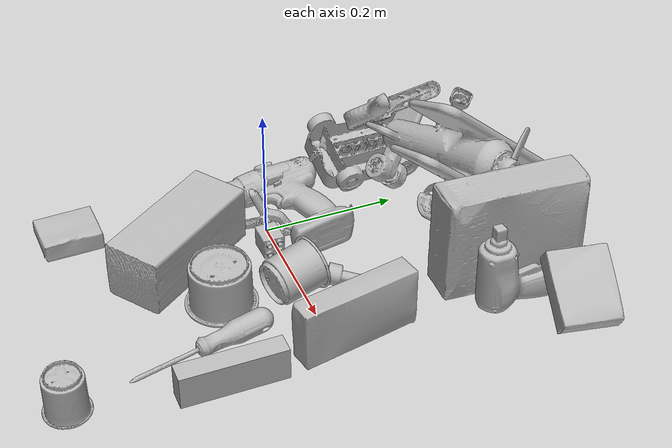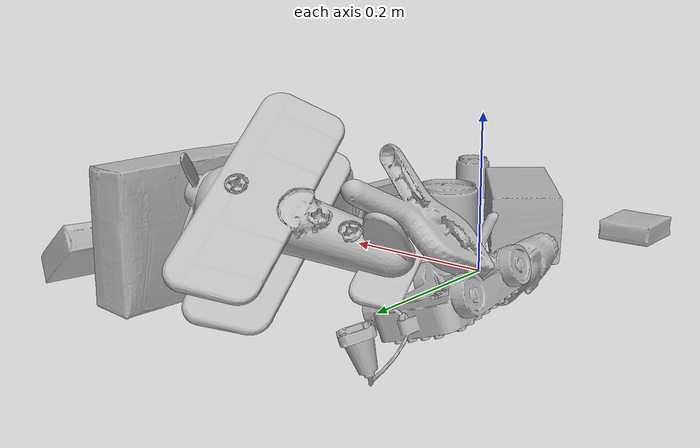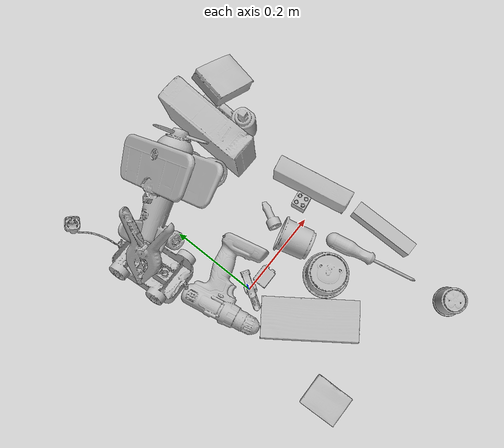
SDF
<sdf version="1.4">
  <world name="default">
    <light name="light1" type="point">
      <pose>0 0 1 0 0 0</pose>
      <diffuse>3 3 3 1</diffuse>
      <specular>3 3 3 1</specular>
    </light>
    <light name="light2" type="point">
      <pose>0 0.5 2 0 0 0</pose>
      <diffuse>1 1 1 1</diffuse>
      <specular>1 1 1 1</specular>
    </light>
    <light name="light3" type="point">
      <pose>0 0.5 2 0 0 0</pose>
      <diffuse>3 3 3 1</diffuse>
      <specular>3 3 3 1</specular>
    </light>
    <scene>
      <ambient>0.7 0.7 0.7</ambient>
    </scene>
    <model name="box21">
      <link name="link_box21">
        <collision name="default">
          <geometry>
            <mesh>
              <uri>model://cracker_box/collision_meshes/collision.obj</uri>
              <scale>1.0 1.0 1.0</scale>
            </mesh>
          </geometry>
          <surface>
            <friction>
              <ode>
                <mu>0.5</mu>
                <mu2>0.5</mu2>
              </ode>
            </friction>
          <contact>
        <ode>
            <max_vel>0</max_vel>
            <min_depth>0.0001</min_depth>
            <kp>1e8</kp>
        </ode>
    </contact></surface>
        </collision>
        <visual name="default">
          <geometry>
            <mesh>
              <uri>model://cracker_box/visual_meshes/visual.dae</uri>
              <scale>1.0 1.0 1.0</scale>
            </mesh>
          </geometry>
        </visual>
        <inertial>
          <mass>2.2869980335235596</mass>
          <pose>0.0009464151225984097 0.0002543425071053207 -0.0017029535956680775 -0.0003162075418873318 -0.011106487737663914 0.0025467956997025456</pose>
          <inertia>
            <ixx>0.005817102</ixx>
            <iyy>0.009605178</iyy>
            <izz>0.013707472</izz>
            <ixy>0</ixy>
            <ixz>0</ixz>
            <iyz>0</iyz>
          </inertia>
        </inertial>
      </link>
      <pose>0.2186243236064911 0.28178444504737854 0.08175773918628693 1.5452255725080954 0.009039243670831037 1.5375329191094969</pose>
    </model>
    <model name="box22">
      <link name="link_box22">
        <collision name="default">
          <geometry>
            <mesh>
              <uri>model://pudding_box/collision_meshes/collision.obj</uri>
              <scale>1.0 1.0 1.0</scale>
            </mesh>
          </geometry>
          <surface>
            <friction>
              <ode>
                <mu>0.5</mu>
                <mu2>0.5</mu2>
              </ode>
            </friction>
          <contact>
        <ode>
            <max_vel>0</max_vel>
            <min_depth>0.0001</min_depth>
            <kp>1e8</kp>
        </ode>
    </contact></surface>
        </collision>
        <visual name="default">
          <geometry>
            <mesh>
              <uri>model://pudding_box/visual_meshes/visual.dae</uri>
              <scale>1.0 1.0 1.0</scale>
            </mesh>
          </geometry>
        </visual>
        <inertial>
          <mass>0.5370154976844788</mass>
          <pose>0.0004894821904599667 0.0008067885646596551 -0.0005188827635720372 0.005213101796859606 -0.006603800100757192 0.02007981956729938</pose>
          <inertia>
            <ixx>0.0006070684</ixx>
            <iyy>0.00040843996</iyy>
            <izz>0.00089649507</izz>
            <ixy>0</ixy>
            <ixz>0</ixz>
            <iyz>0</iyz>
          </inertia>
        </inertial>
      </link>
      <pose>0.32950958609580994 0.3380461037158966 0.04389103129506111 -2.5781946163838043 -0.018219446237163782 1.3791597333598353</pose>
    </model>
    <model name="box23">
      <link name="link_box23">
        <collision name="default">
          <geometry>
            <mesh>
              <uri>model://jenga/collision_meshes/collision.obj</uri>
              <scale>1.0 1.0 1.0</scale>
            </mesh>
          </geometry>
          <surface>
            <friction>
              <ode>
                <mu>0.5</mu>
                <mu2>0.5</mu2>
              </ode>
            </friction>
          <contact>
        <ode>
            <max_vel>0</max_vel>
            <min_depth>0.0001</min_depth>
            <kp>1e8</kp>
        </ode>
    </contact></surface>
        </collision>
        <visual name="default">
          <geometry>
            <mesh>
              <uri>model://jenga/visual_meshes/visual.dae</uri>
              <scale>1.0 1.0 1.0</scale>
            </mesh>
          </geometry>
        </visual>
        <inertial>
          <mass>0.17325031757354736</mass>
          <pose>-2.502855807051674e-07 -0.0001025000965455547 -4.0923401684267446e-05 0.0 -7.34215461761844e-07 0.0</pose>
          <inertia>
            <ixx>4.7942573e-05</ixx>
            <iyy>0.00032485754</iyy>
            <izz>0.00034681303</izz>
            <ixy>0</ixy>
            <ixz>0</ixz>
            <iyz>0</iyz>
          </inertia>
        </inertial>
      </link>
      <pose>0.2850659489631653 -0.14961683750152588 0.024496952071785927 -1.5774969934094016 8.291636621784347e-08 -1.570798253518544</pose>
    </model>
    <model name="cup1">
      <link name="link_cup1">
        <collision name="default">
          <geometry>
            <mesh>
              <uri>model://c_cups/collision_meshes/collision.obj</uri>
              <scale>1.0 1.0 1.0</scale>
            </mesh>
          </geometry>
          <surface>
            <friction>
              <ode>
                <mu>0.5</mu>
                <mu2>0.5</mu2>
              </ode>
            </friction>
          <contact>
        <ode>
            <max_vel>0</max_vel>
            <min_depth>0.0001</min_depth>
            <kp>1e8</kp>
        </ode>
    </contact></surface>
        </collision>
        <visual name="default">
          <geometry>
            <mesh>
              <uri>model://c_cups/visual_meshes/visual.dae</uri>
              <scale>1.0 1.0 1.0</scale>
            </mesh>
          </geometry>
        </visual>
        <inertial>
          <mass>0.033937059342861176</mass>
          <pose>0.0007237257086671889 0.002015391131862998 -0.0012750985333696008 0.3021568203324006 0.0134615240317058 -0.08771816491093205</pose>
          <inertia>
            <ixx>2.5238536e-05</ixx>
            <iyy>2.4792533e-05</iyy>
            <izz>2.2320162e-05</izz>
            <ixy>0</ixy>
            <ixz>0</ixz>
            <iyz>0</iyz>
          </inertia>
        </inertial>
      </link>
      <pose>0.25108328461647034 -0.3586447536945343 0.03345794230699539 3.1415895109355834 7.317653780769577e-06 -0.5388472066433172</pose>
    </model>
    <model name="cup2">
      <link name="link_cup2">
        <collision name="default">
          <geometry>
            <mesh>
              <uri>model://f_cups/collision_meshes/collision.obj</uri>
              <scale>1.0 1.0 1.0</scale>
            </mesh>
          </geometry>
          <surface>
            <friction>
              <ode>
                <mu>0.5</mu>
                <mu2>0.5</mu2>
              </ode>
            </friction>
          <contact>
        <ode>
            <max_vel>0</max_vel>
            <min_depth>0.0001</min_depth>
            <kp>1e8</kp>
        </ode>
    </contact></surface>
        </collision>
        <visual name="default">
          <geometry>
            <mesh>
              <uri>model://f_cups/visual_meshes/visual.dae</uri>
              <scale>1.0 1.0 1.0</scale>
            </mesh>
          </geometry>
        </visual>
        <inertial>
          <mass>0.10278050601482391</mass>
          <pose>-0.003171466989442706 -0.0006240068469196558 -0.003655537962913513 0.7862283183637603 -0.2607933822369466 -0.1823733550036739</pose>
          <inertia>
            <ixx>9.661645e-05</ixx>
            <iyy>0.00010135175</iyy>
            <izz>0.000105510015</izz>
            <ixy>0</ixy>
            <ixz>0</ixz>
            <iyz>0</iyz>
          </inertia>
        </inertial>
      </link>
      <pose>0.14634668827056885 -0.01293276622891426 0.03703070059418678 1.3151822025973394 -1.1784336254432313 -2.646452695091779</pose>
    </model>
    <model name="box11">
      <link name="link_box11">
        <collision name="default">
          <geometry>
            <mesh>
              <uri>model://wood_block/collision_meshes/collision.obj</uri>
              <scale>1.0 1.0 1.0</scale>
            </mesh>
          </geometry>
          <surface>
            <friction>
              <ode>
                <mu>0.5</mu>
                <mu2>0.5</mu2>
              </ode>
            </friction>
          <contact>
        <ode>
            <max_vel>0</max_vel>
            <min_depth>0.0001</min_depth>
            <kp>1e8</kp>
        </ode>
    </contact></surface>
        </collision>
        <visual name="default">
          <geometry>
            <mesh>
              <uri>model://wood_block/visual_meshes/visual.dae</uri>
              <scale>1.0 1.0 1.0</scale>
            </mesh>
          </geometry>
        </visual>
        <inertial>
          <mass>2.321592330932617</mass>
          <pose>-5.813315056002466e-06 -0.000570809468626976 0.0002640858292579651 -0.052209755297172346 -0.005192694580027673 -0.006861376555374886</pose>
          <inertia>
            <ixx>0.0031066423</ixx>
            <iyy>0.009813884</iyy>
            <izz>0.009777175</izz>
            <ixy>0</ixy>
            <ixz>0</ixz>
            <iyz>0</iyz>
          </inertia>
        </inertial>
      </link>
      <pose>0.02806086093187332 -0.1425059288740158 0.04570064693689346 1.568130066593328 -0.006939247699407973 -0.944622491086994</pose>
    </model>
    <model name="box12">
      <link name="link_box12">
        <collision name="default">
          <geometry>
            <mesh>
              <uri>model://gelatin_box/collision_meshes/collision.obj</uri>
              <scale>1.0 1.0 1.0</scale>
            </mesh>
          </geometry>
          <surface>
            <friction>
              <ode>
                <mu>0.5</mu>
                <mu2>0.5</mu2>
              </ode>
            </friction>
          <contact>
        <ode>
            <max_vel>0</max_vel>
            <min_depth>0.0001</min_depth>
            <kp>1e8</kp>
        </ode>
    </contact></surface>
        </collision>
        <visual name="default">
          <geometry>
            <mesh>
              <uri>model://gelatin_box/visual_meshes/visual.dae</uri>
              <scale>1.0 1.0 1.0</scale>
            </mesh>
          </geometry>
        </visual>
        <inertial>
          <mass>0.2263340801000595</mass>
          <pose>0.0004319618456065655 0.00011156871914863586 -0.00036403207923285663 -0.001050371981036731 -0.004755818689382226 0.016440561334450605</pose>
          <inertia>
            <ixx>0.00015977336</ixx>
            <iyy>0.00011412529</iyy>
            <izz>0.00024321067</izz>
            <ixy>0</ixy>
            <ixz>0</ixz>
            <iyz>0</iyz>
          </inertia>
        </inertial>
      </link>
      <pose>-0.08308575302362442 -0.27724531292915344 0.015168312005698681 0.005597481810681447 -0.007304567212865352 0.019800986934652622</pose>
    </model>
    <model name="box13">
      <link name="link_box13">
        <collision name="default">
          <geometry>
            <mesh>
              <uri>model://sugar_box/collision_meshes/collision.obj</uri>
              <scale>1.0 1.0 1.0</scale>
            </mesh>
          </geometry>
          <surface>
            <friction>
              <ode>
                <mu>0.5</mu>
                <mu2>0.5</mu2>
              </ode>
            </friction>
          <contact>
        <ode>
            <max_vel>0</max_vel>
            <min_depth>0.0001</min_depth>
            <kp>1e8</kp>
        </ode>
    </contact></surface>
        </collision>
        <visual name="default">
          <geometry>
            <mesh>
              <uri>model://sugar_box/visual_meshes/visual.dae</uri>
              <scale>1.0 1.0 1.0</scale>
            </mesh>
          </geometry>
        </visual>
        <inertial>
          <mass>0.4976349174976349</mass>
          <pose>0.0010343727190047503 3.849109634757042e-05 -0.00036364805418998003 -0.0004046263004245651 0.001050663405794887 0.002615379021776999</pose>
          <inertia>
            <ixx>0.0004146281</ixx>
            <iyy>0.0013401629</iyy>
            <izz>0.0016043353</izz>
            <ixy>0</ixy>
            <ixz>0</ixz>
            <iyz>0</iyz>
          </inertia>
        </inertial>
      </link>
      <pose>0.26289623975753784 0.03114255517721176 0.04635182395577431 -1.591764103698983 -0.009312178767114437 1.753650972507802</pose>
    </model>
    <model name="box14">
      <link name="link_box14">
        <collision name="default">
          <geometry>
            <mesh>
              <uri>model://rubiks_cube/collision_meshes/collision.obj</uri>
              <scale>1.0 1.0 1.0</scale>
            </mesh>
          </geometry>
          <surface>
            <friction>
              <ode>
                <mu>0.5</mu>
                <mu2>0.5</mu2>
              </ode>
            </friction>
          <contact>
        <ode>
            <max_vel>0</max_vel>
            <min_depth>0.0001</min_depth>
            <kp>1e8</kp>
        </ode>
    </contact></surface>
        </collision>
        <visual name="default">
          <geometry>
            <mesh>
              <uri>model://rubiks_cube/visual_meshes/visual.dae</uri>
              <scale>1.0 1.0 1.0</scale>
            </mesh>
          </geometry>
        </visual>
        <inertial>
          <mass>0.2531126141548157</mass>
          <pose>2.6721041649580002e-05 5.2569666877388954e-05 -7.264316536748083e-06 -0.05467274129792389 -0.0981396008906979 -0.0344563195746163</pose>
          <inertia>
            <ixx>0.00013986173</ixx>
            <iyy>0.00013920949</iyy>
            <izz>0.00014102072</izz>
            <ixy>0</ixy>
            <ixz>0</ixz>
            <iyz>0</iyz>
          </inertia>
        </inertial>
      </link>
      <pose>0.1300724595785141 -0.11142284423112869 0.02933083288371563 1.577764520146619 -0.016539248023460133 -1.3957147437742194</pose>
    </model>
    <model name="cup15">
      <link name="link_cup15">
        <collision name="default">
          <geometry>
            <mesh>
              <uri>model://j_cups/collision_meshes/collision.obj</uri>
              <scale>1.0 1.0 1.0</scale>
            </mesh>
          </geometry>
          <surface>
            <friction>
              <ode>
                <mu>0.5</mu>
                <mu2>0.5</mu2>
              </ode>
            </friction>
          <contact>
        <ode>
            <max_vel>0</max_vel>
            <min_depth>0.0001</min_depth>
            <kp>1e8</kp>
        </ode>
    </contact></surface>
        </collision>
        <visual name="default">
          <geometry>
            <mesh>
              <uri>model://j_cups/visual_meshes/visual.dae</uri>
              <scale>1.0 1.0 1.0</scale>
            </mesh>
          </geometry>
        </visual>
        <inertial>
          <mass>0.12765173614025116</mass>
          <pose>0.0006164864171296358 0.0005398980574682355 -0.0013479006011039019 0.030303852295551513 0.03757989298695449 0.4386938541947324</pose>
          <inertia>
            <ixx>0.00018743309</ixx>
            <iyy>0.00018938213</iyy>
            <izz>0.0002160715</izz>
            <ixy>0</ixy>
            <ixz>0</ixz>
            <iyz>0</iyz>
          </inertia>
        </inertial>
      </link>
      <pose>0.13029469549655914 -0.1130780577659607 0.03800104558467865 -3.139910264038598 0.006110626851859396 -1.3322771193246024</pose>
    </model>
    <model name="toy1">
      <link name="link_toy1">
        <collision name="default">
          <geometry>
            <mesh>
              <uri>model://f_lego_duplo/collision_meshes/collision.obj</uri>
              <scale>1.0 1.0 1.0</scale>
            </mesh>
          </geometry>
          <surface>
            <friction>
              <ode>
                <mu>0.5</mu>
                <mu2>0.5</mu2>
              </ode>
            </friction>
          <contact>
        <ode>
            <max_vel>0</max_vel>
            <min_depth>0.0001</min_depth>
            <kp>1e8</kp>
        </ode>
    </contact></surface>
        </collision>
        <visual name="default">
          <geometry>
            <mesh>
              <uri>model://f_lego_duplo/visual_meshes/visual.dae</uri>
              <scale>1.0 1.0 1.0</scale>
            </mesh>
          </geometry>
        </visual>
        <inertial>
          <mass>0.04013235494494438</mass>
          <pose>2.369376306887716e-05 0.00013393163681030273 0.0018837876850739121 0.029838734112773806 -0.014424842824784668 -0.6756708500035773</pose>
          <inertia>
            <ixx>8.480189e-06</ixx>
            <iyy>8.555736e-06</iyy>
            <izz>7.361164e-06</izz>
            <ixy>0</ixy>
            <ixz>0</ixz>
            <iyz>0</iyz>
          </inertia>
        </inertial>
      </link>
      <pose>0.22302334010601044 0.030395960435271263 0.021860919892787933 -0.00019739555344721444 0.001104667566801872 1.715119795806342</pose>
    </model>
    <model name="toy2">
      <link name="link_toy2">
        <collision name="default">
          <geometry>
            <mesh>
              <uri>model://e_toy_airplane/collision_meshes/collision.obj</uri>
              <scale>1.0 1.0 1.0</scale>
            </mesh>
          </geometry>
          <surface>
            <friction>
              <ode>
                <mu>0.5</mu>
                <mu2>0.5</mu2>
              </ode>
            </friction>
          <contact>
        <ode>
            <max_vel>0</max_vel>
            <min_depth>0.0001</min_depth>
            <kp>1e8</kp>
        </ode>
    </contact></surface>
        </collision>
        <visual name="default">
          <geometry>
            <mesh>
              <uri>model://e_toy_airplane/visual_meshes/visual.dae</uri>
              <scale>1.0 1.0 1.0</scale>
            </mesh>
          </geometry>
        </visual>
        <inertial>
          <mass>0.030105752870440483</mass>
          <pose>0.00011740480840671808 -2.248285454697907e-05 -0.011187204159796238 0.0055184715057391125 0.009228317867647443 0.150413097465581</pose>
          <inertia>
            <ixx>9.18862e-06</ixx>
            <iyy>9.094625e-06</iyy>
            <izz>2.761542e-06</izz>
            <ixy>0</ixy>
            <ixz>0</ixz>
            <iyz>0</iyz>
          </inertia>
        </inertial>
      </link>
      <pose>0.15880826115608215 0.06825195997953415 0.011941938661038876 2.045235579596801 1.130941514301923 3.0824518905053213</pose>
    </model>
    <model name="toy3">
      <link name="link_toy3">
        <collision name="default">
          <geometry>
            <mesh>
              <uri>model://g_lego_duplo/collision_meshes/collision.obj</uri>
              <scale>1.0 1.0 1.0</scale>
            </mesh>
          </geometry>
          <surface>
            <friction>
              <ode>
                <mu>0.5</mu>
                <mu2>0.5</mu2>
              </ode>
            </friction>
          <contact>
        <ode>
            <max_vel>0</max_vel>
            <min_depth>0.0001</min_depth>
            <kp>1e8</kp>
        </ode>
    </contact></surface>
        </collision>
        <visual name="default">
          <geometry>
            <mesh>
              <uri>model://g_lego_duplo/visual_meshes/visual.dae</uri>
              <scale>1.0 1.0 1.0</scale>
            </mesh>
          </geometry>
        </visual>
        <inertial>
          <mass>0.4529305100440979</mass>
          <pose>-0.050047703087329865 0.0017554633086547256 0.0038806775119155645 0.010963008114131517 0.03810824387856379 -0.09653032518797504</pose>
          <inertia>
            <ixx>0.00065630145</ixx>
            <iyy>0.0019842102</iyy>
            <izz>0.0024823209</izz>
            <ixy>0</ixy>
            <ixz>0</ixz>
            <iyz>0</iyz>
          </inertia>
        </inertial>
      </link>
      <pose>-0.09984800219535828 0.2523324489593506 0.038110677152872086 -2.8050437893737397 0.05053024427955252 1.6593400678156762</pose>
    </model>
    <model name="toy4">
      <link name="link_toy4">
        <collision name="default">
          <geometry>
            <mesh>
              <uri>model://b_lego_duplo/collision_meshes/collision.obj</uri>
              <scale>1.0 1.0 1.0</scale>
            </mesh>
          </geometry>
          <surface>
            <friction>
              <ode>
                <mu>0.5</mu>
                <mu2>0.5</mu2>
              </ode>
            </friction>
          <contact>
        <ode>
            <max_vel>0</max_vel>
            <min_depth>0.0001</min_depth>
            <kp>1e8</kp>
        </ode>
    </contact></surface>
        </collision>
        <visual name="default">
          <geometry>
            <mesh>
              <uri>model://b_lego_duplo/visual_meshes/visual.dae</uri>
              <scale>1.0 1.0 1.0</scale>
            </mesh>
          </geometry>
        </visual>
        <inertial>
          <mass>0.018499748781323433</mass>
          <pose>-0.00011053003981942311 -9.15247255761642e-06 0.001929429592564702 -0.037494549291744686 -0.026354734626349716 0.4518828938821803</pose>
          <inertia>
            <ixx>3.786112e-06</ixx>
            <iyy>3.8115643e-06</iyy>
            <izz>3.3733036e-06</izz>
            <ixy>0</ixy>
            <ixz>0</ixz>
            <iyz>0</iyz>
          </inertia>
        </inertial>
      </link>
      <pose>0.04394933581352234 -0.0089877899736166 0.01612132415175438 1.572374612775261 -0.012010143768493213 1.584671040200041</pose>
    </model>
    <model name="toy5">
      <link name="link_toy5">
        <collision name="default">
          <geometry>
            <mesh>
              <uri>model://b_toy_airplane/collision_meshes/collision.obj</uri>
              <scale>1.0 1.0 1.0</scale>
            </mesh>
          </geometry>
          <surface>
            <friction>
              <ode>
                <mu>0.5</mu>
                <mu2>0.5</mu2>
              </ode>
            </friction>
          <contact>
        <ode>
            <max_vel>0</max_vel>
            <min_depth>0.0001</min_depth>
            <kp>1e8</kp>
        </ode>
    </contact></surface>
        </collision>
        <visual name="default">
          <geometry>
            <mesh>
              <uri>model://b_toy_airplane/visual_meshes/visual.dae</uri>
              <scale>1.0 1.0 1.0</scale>
            </mesh>
          </geometry>
        </visual>
        <inertial>
          <mass>0.38904744386672974</mass>
          <pose>0.00508136348798871 0.004015582147985697 0.00954306498169899 -0.040018071915393034 -0.04022181905785318 -0.5601502897874057</pose>
          <inertia>
            <ixx>0.00072227366</ixx>
            <iyy>0.0002886998</iyy>
            <izz>0.0008985803</izz>
            <ixy>0</ixy>
            <ixz>0</ixz>
            <iyz>0</iyz>
          </inertia>
        </inertial>
      </link>
      <pose>0.2663436830043793 0.260710746049881 0.042723387479782104 0.09407363565178452 -1.5232238730583307 3.1155321349490848</pose>
    </model>
    <model name="toy6">
      <link name="link_toy6">
        <collision name="default">
          <geometry>
            <mesh>
              <uri>model://a_toy_airplane/collision_meshes/collision.obj</uri>
              <scale>1.0 1.0 1.0</scale>
            </mesh>
          </geometry>
          <surface>
            <friction>
              <ode>
                <mu>0.5</mu>
                <mu2>0.5</mu2>
              </ode>
            </friction>
          <contact>
        <ode>
            <max_vel>0</max_vel>
            <min_depth>0.0001</min_depth>
            <kp>1e8</kp>
        </ode>
    </contact></surface>
        </collision>
        <visual name="default">
          <geometry>
            <mesh>
              <uri>model://a_toy_airplane/visual_meshes/visual.dae</uri>
              <scale>1.0 1.0 1.0</scale>
            </mesh>
          </geometry>
        </visual>
        <inertial>
          <mass>2.344027519226074</mass>
          <pose>0.025165099650621414 -0.003707322059199214 -0.0011962436838075519 -0.012016950381748406 -0.14663507119063698 0.004149124939747771</pose>
          <inertia>
            <ixx>0.008512287</ixx>
            <iyy>0.012404123</iyy>
            <izz>0.014523712</izz>
            <ixy>0</ixy>
            <ixz>0</ixz>
            <iyz>0</iyz>
          </inertia>
        </inertial>
      </link>
      <pose>0.04770758002996445 0.2695188820362091 0.09968370944261551 -0.7283330662712066 -0.09521059960532789 0.22154550976128465</pose>
    </model>
    <model name="hardware1">
      <link name="link_hardware1">
        <collision name="default">
          <geometry>
            <mesh>
              <uri>model://power_drill/collision_meshes/collision.obj</uri>
              <scale>1.0 1.0 1.0</scale>
            </mesh>
          </geometry>
          <surface>
            <friction>
              <ode>
                <mu>0.5</mu>
                <mu2>0.5</mu2>
              </ode>
            </friction>
          <contact>
        <ode>
            <max_vel>0</max_vel>
            <min_depth>0.0001</min_depth>
            <kp>1e8</kp>
        </ode>
    </contact></surface>
        </collision>
        <visual name="default">
          <geometry>
            <mesh>
              <uri>model://power_drill/visual_meshes/visual.dae</uri>
              <scale>1.0 1.0 1.0</scale>
            </mesh>
          </geometry>
        </visual>
        <inertial>
          <mass>0.3504050374031067</mass>
          <pose>-0.014780547469854355 0.014369429089128971 0.0012414171360433102 0.0046091621872236125 0.004073022304059966 -0.18362696816981472</pose>
          <inertia>
            <ixx>0.001427917</ixx>
            <iyy>0.0005618108</iyy>
            <izz>0.0018858167</izz>
            <ixy>0</ixy>
            <ixz>0</ixz>
            <iyz>0</iyz>
          </inertia>
        </inertial>
      </link>
      <pose>-0.008144699037075043 0.03231585770845413 0.0291807409375906 -3.1217082063213244 -0.03200161828469566 -1.3690196985871659</pose>
    </model>
    <model name="hardware2">
      <link name="link_hardware2">
        <collision name="default">
          <geometry>
            <mesh>
              <uri>model://phillips_screwdriver/collision_meshes/collision.obj</uri>
              <scale>1.0 1.0 1.0</scale>
            </mesh>
          </geometry>
          <surface>
            <friction>
              <ode>
                <mu>0.5</mu>
                <mu2>0.5</mu2>
              </ode>
            </friction>
          <contact>
        <ode>
            <max_vel>0</max_vel>
            <min_depth>0.0001</min_depth>
            <kp>1e8</kp>
        </ode>
    </contact></surface>
        </collision>
        <visual name="default">
          <geometry>
            <mesh>
              <uri>model://phillips_screwdriver/visual_meshes/visual.dae</uri>
              <scale>1.0 1.0 1.0</scale>
            </mesh>
          </geometry>
        </visual>
        <inertial>
          <mass>0.06613585352897644</mass>
          <pose>-0.04777182638645172 0.0010362302418798208 -0.000455554953077808 -0.157256923583716 0.005850995849984215 -0.0021567369270283215</pose>
          <inertia>
            <ixx>7.770284e-06</ixx>
            <iyy>9.742579e-05</iyy>
            <izz>9.7508564e-05</izz>
            <ixy>0</ixy>
            <ixz>0</ixz>
            <iyz>0</iyz>
          </inertia>
        </inertial>
      </link>
      <pose>0.21804572641849518 -0.16611671447753906 0.015812013298273087 -0.3293025493621922 0.03628481106502712 -1.3593568006191112</pose>
    </model>
    <model name="hardware3">
      <link name="link_hardware3">
        <collision name="default">
          <geometry>
            <mesh>
              <uri>model://large_clamp/collision_meshes/collision.obj</uri>
              <scale>1.0 1.0 1.0</scale>
            </mesh>
          </geometry>
          <surface>
            <friction>
              <ode>
                <mu>0.5</mu>
                <mu2>0.5</mu2>
              </ode>
            </friction>
          <contact>
        <ode>
            <max_vel>0</max_vel>
            <min_depth>0.0001</min_depth>
            <kp>1e8</kp>
        </ode>
    </contact></surface>
        </collision>
        <visual name="default">
          <geometry>
            <mesh>
              <uri>model://large_clamp/visual_meshes/visual.dae</uri>
              <scale>1.0 1.0 1.0</scale>
            </mesh>
          </geometry>
        </visual>
        <inertial>
          <mass>0.0812491774559021</mass>
          <pose>0.00636935792863369 0.00035856812610290945 -0.0001839803153416142 -0.0021330695247891995 0.009671592144941876 0.026633191629386817</pose>
          <inertia>
            <ixx>7.1684015e-05</ixx>
            <iyy>0.00013613176</iyy>
            <izz>0.00019693196</izz>
            <ixy>0</ixy>
            <ixz>0</ixz>
            <iyz>0</iyz>
          </inertia>
        </inertial>
      </link>
      <pose>-0.0730346292257309 0.2132646143436432 0.11947943270206451 -2.8740311793811224 0.7088685714340967 -2.641785234838788</pose>
    </model>
    <model name="hardware4">
      <link name="link_hardware4">
        <collision name="default">
          <geometry>
            <mesh>
              <uri>model://medium_clamp/collision_meshes/collision.obj</uri>
              <scale>1.0 1.0 1.0</scale>
            </mesh>
          </geometry>
          <surface>
            <friction>
              <ode>
                <mu>0.5</mu>
                <mu2>0.5</mu2>
              </ode>
            </friction>
          <contact>
        <ode>
            <max_vel>0</max_vel>
            <min_depth>0.0001</min_depth>
            <kp>1e8</kp>
        </ode>
    </contact></surface>
        </collision>
        <visual name="default">
          <geometry>
            <mesh>
              <uri>model://medium_clamp/visual_meshes/visual.dae</uri>
              <scale>1.0 1.0 1.0</scale>
            </mesh>
          </geometry>
        </visual>
        <inertial>
          <mass>0.04165364429354668</mass>
          <pose>0.0053909956477582455 0.00039532381924800575 -0.0001222159044118598 -0.0012269202016338824 0.0025845009837354585 0.038207769727488725</pose>
          <inertia>
            <ixx>1.134795e-05</ixx>
            <iyy>1.6514476e-05</iyy>
            <izz>2.5437248e-05</izz>
            <ixy>0</ixy>
            <ixz>0</ixz>
            <iyz>0</iyz>
          </inertia>
        </inertial>
      </link>
      <pose>0.002233350882306695 -0.0021373333875089884 0.025561492890119553 -1.5933689075738602 0.3773775052745393 1.0018612345771463</pose>
    </model>
  <physics type="ode">
      <max_contacts>50</max_contacts>
      <ode>
        <solver>
          <type>quick</type>
          <iters>75</iters>
        </solver>
        <constraints>
          <contact_max_correcting_vel>0</contact_max_correcting_vel>
          <contact_surface_layer>0</contact_surface_layer>
        </constraints>
      </ode>
    </physics></world>
</sdf>
